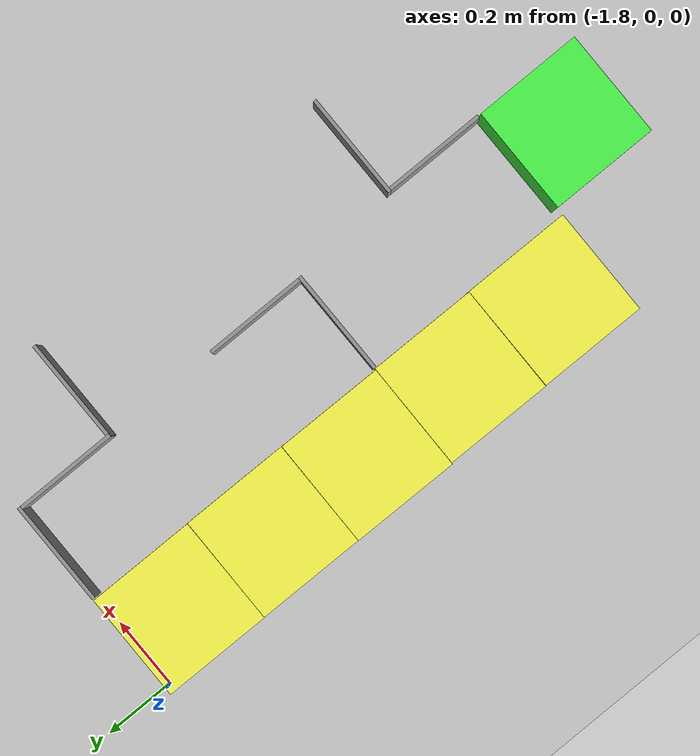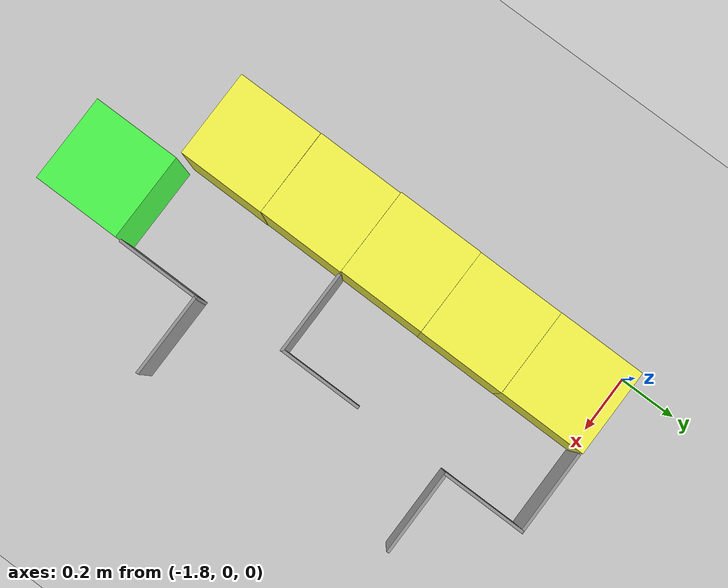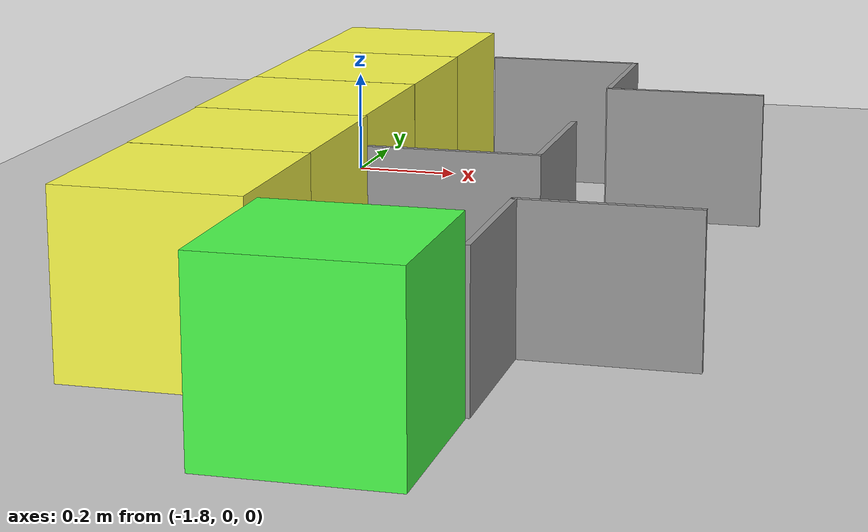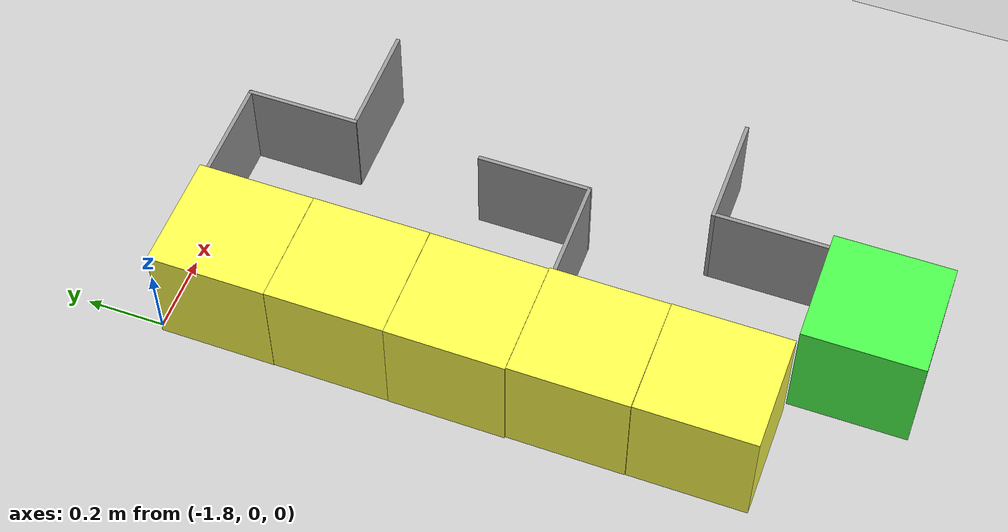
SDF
<sdf version="1.6">
 <world name="default">
  <model name="ground_plane">
   <static>1</static>
   <link name="link">
    <collision name="collision">
     <geometry><plane><normal>0 0 1</normal><size>100 100</size></plane></geometry>
     <surface><friction><ode><mu>100</mu><mu2>50</mu2></ode></friction></surface>
    </collision>
    <visual name="visual">
     <cast_shadows>0</cast_shadows>
     <geometry><plane><normal>0 0 1</normal><size>100 100</size></plane></geometry>
     <material>
      <script><uri>file://media/materials/scripts/gazebo.material</uri><name>Gazebo/Grey</name></script>
     </material>
    </visual>
   </link>
  </model>
  <model name="Box_Yellow">
   <link name="link_0">
    <inertial>
     <mass>1</mass>
     <inertia>
      <ixx>0.166667</ixx>
      <ixy>0</ixy>
      <ixz>0</ixz>
      <iyy>0.166667</iyy>
      <iyz>0</iyz>
      <izz>0.166667</izz>
     </inertia>
    </inertial>
    <visual name="visual">
     <geometry><box><size>0.3 0.3 0.3</size></box></geometry>
     <material>
      <lighting>1</lighting>
      <script><uri>file://media/materials/scripts/gazebo.material</uri><name>Gazebo/Grey</name></script>
      <ambient>1 1 0.3 1</ambient>
      <diffuse>0.7 0.7 0.7 1</diffuse>
      <specular>0.01 0.01 0.01 1</specular>
      <emissive>0 0 0 1</emissive>
      <shader type="vertex"><normal_map>__default__</normal_map></shader>
     </material>
    </visual>
    <collision name="collision">
     <geometry><box><size>0.3 0.3 0.3</size></box></geometry>
     <surface>
      <friction>
       <ode><mu>1</mu><mu2>1</mu2><fdir1>0 0 0</fdir1><slip1>0</slip1><slip2>0</slip2></ode>
       <torsional>
        <coefficient>1</coefficient>
        <patch_radius>0</patch_radius>
        <surface_radius>0</surface_radius>
        <use_patch_radius>1</use_patch_radius>
        <ode><slip>0</slip></ode>
       </torsional>
      </friction>
      <bounce><restitution_coefficient>0</restitution_coefficient><threshold>1e+06</threshold></bounce>
      <contact>
       <collide_without_contact>0</collide_without_contact>
       <collide_without_contact_bitmask>1</collide_without_contact_bitmask>
       <collide_bitmask>1</collide_bitmask>
       <ode>
        <soft_cfm>0</soft_cfm>
        <soft_erp>0.2</soft_erp>
        <kp>1e+13</kp>
        <kd>1</kd>
        <max_vel>0.01</max_vel>
        <min_depth>0</min_depth>
       </ode>
       <bullet>
        <split_impulse>1</split_impulse>
        <split_impulse_penetration_threshold>-0.01</split_impulse_penetration_threshold>
        <soft_cfm>0</soft_cfm>
        <soft_erp>0.2</soft_erp>
        <kp>1e+13</kp>
        <kd>1</kd>
       </bullet>
      </contact>
     </surface>
    </collision>
   </link>
   <static>0</static>
   <pose>-1.66348 -1.35762 0.15 -0 -0 -0.001902</pose>
  </model>
  <model name="Box_Yellow_clone">
   <link name="link_0">
    <inertial>
     <mass>1</mass>
     <inertia>
      <ixx>0.166667</ixx>
      <ixy>0</ixy>
      <ixz>0</ixz>
      <iyy>0.166667</iyy>
      <iyz>0</iyz>
      <izz>0.166667</izz>
     </inertia>
    </inertial>
    <visual name="visual">
     <geometry><box><size>0.3 0.3 0.3</size></box></geometry>
     <material>
      <lighting>1</lighting>
      <script><uri>file://media/materials/scripts/gazebo.material</uri><name>Gazebo/Grey</name></script>
      <ambient>1 1 0.3 1</ambient>
      <diffuse>0.7 0.7 0.7 1</diffuse>
      <specular>0.01 0.01 0.01 1</specular>
      <emissive>0 0 0 1</emissive>
      <shader type="vertex"><normal_map>__default__</normal_map></shader>
     </material>
    </visual>
    <collision name="collision">
     <geometry><box><size>0.3 0.3 0.3</size></box></geometry>
     <surface>
      <friction>
       <ode><mu>1</mu><mu2>1</mu2><fdir1>0 0 0</fdir1><slip1>0</slip1><slip2>0</slip2></ode>
       <torsional>
        <coefficient>1</coefficient>
        <patch_radius>0</patch_radius>
        <surface_radius>0</surface_radius>
        <use_patch_radius>1</use_patch_radius>
        <ode><slip>0</slip></ode>
       </torsional>
      </friction>
      <bounce><restitution_coefficient>0</restitution_coefficient><threshold>1e+06</threshold></bounce>
      <contact>
       <collide_without_contact>0</collide_without_contact>
       <collide_without_contact_bitmask>1</collide_without_contact_bitmask>
       <collide_bitmask>1</collide_bitmask>
       <ode>
        <soft_cfm>0</soft_cfm>
        <soft_erp>0.2</soft_erp>
        <kp>1e+13</kp>
        <kd>1</kd>
        <max_vel>0.01</max_vel>
        <min_depth>0</min_depth>
       </ode>
       <bullet>
        <split_impulse>1</split_impulse>
        <split_impulse_penetration_threshold>-0.01</split_impulse_penetration_threshold>
        <soft_cfm>0</soft_cfm>
        <soft_erp>0.2</soft_erp>
        <kp>1e+13</kp>
        <kd>1</kd>
       </bullet>
      </contact>
     </surface>
    </collision>
   </link>
   <static>0</static>
   <pose>-1.66364 -1.05705 0.15 -0 -0 -0.004612</pose>
  </model>
  <model name="Box_Yellow_clone_0">
   <link name="link_0">
    <inertial>
     <mass>1</mass>
     <inertia>
      <ixx>0.166667</ixx>
      <ixy>0</ixy>
      <ixz>0</ixz>
      <iyy>0.166667</iyy>
      <iyz>0</iyz>
      <izz>0.166667</izz>
     </inertia>
    </inertial>
    <visual name="visual">
     <geometry><box><size>0.3 0.3 0.3</size></box></geometry>
     <material>
      <lighting>1</lighting>
      <script><uri>file://media/materials/scripts/gazebo.material</uri><name>Gazebo/Grey</name></script>
      <ambient>1 1 0.3 1</ambient>
      <diffuse>0.7 0.7 0.7 1</diffuse>
      <specular>0.01 0.01 0.01 1</specular>
      <emissive>0 0 0 1</emissive>
      <shader type="vertex"><normal_map>__default__</normal_map></shader>
     </material>
    </visual>
    <collision name="collision">
     <geometry><box><size>0.3 0.3 0.3</size></box></geometry>
     <surface>
      <friction>
       <ode><mu>1</mu><mu2>1</mu2><fdir1>0 0 0</fdir1><slip1>0</slip1><slip2>0</slip2></ode>
       <torsional>
        <coefficient>1</coefficient>
        <patch_radius>0</patch_radius>
        <surface_radius>0</surface_radius>
        <use_patch_radius>1</use_patch_radius>
        <ode><slip>0</slip></ode>
       </torsional>
      </friction>
      <bounce><restitution_coefficient>0</restitution_coefficient><threshold>1e+06</threshold></bounce>
      <contact>
       <collide_without_contact>0</collide_without_contact>
       <collide_without_contact_bitmask>1</collide_without_contact_bitmask>
       <collide_bitmask>1</collide_bitmask>
       <ode>
        <soft_cfm>0</soft_cfm>
        <soft_erp>0.2</soft_erp>
        <kp>1e+13</kp>
        <kd>1</kd>
        <max_vel>0.01</max_vel>
        <min_depth>0</min_depth>
       </ode>
       <bullet>
        <split_impulse>1</split_impulse>
        <split_impulse_penetration_threshold>-0.01</split_impulse_penetration_threshold>
        <soft_cfm>0</soft_cfm>
        <soft_erp>0.2</soft_erp>
        <kp>1e+13</kp>
        <kd>1</kd>
       </bullet>
      </contact>
     </surface>
    </collision>
   </link>
   <static>0</static>
   <pose>-1.66556 -0.756788 0.149998 8e-06 4e-06 -0.005231</pose>
  </model>
  <model name="Box_Yellow_clone_1">
   <link name="link_0">
    <inertial>
     <mass>1</mass>
     <inertia>
      <ixx>0.166667</ixx>
      <ixy>0</ixy>
      <ixz>0</ixz>
      <iyy>0.166667</iyy>
      <iyz>0</iyz>
      <izz>0.166667</izz>
     </inertia>
    </inertial>
    <visual name="visual">
     <geometry><box><size>0.3 0.3 0.3</size></box></geometry>
     <material>
      <lighting>1</lighting>
      <script><uri>file://media/materials/scripts/gazebo.material</uri><name>Gazebo/Grey</name></script>
      <ambient>1 1 0.3 1</ambient>
      <diffuse>0.7 0.7 0.7 1</diffuse>
      <specular>0.01 0.01 0.01 1</specular>
      <emissive>0 0 0 1</emissive>
      <shader type="vertex"><normal_map>__default__</normal_map></shader>
     </material>
    </visual>
    <collision name="collision">
     <geometry><box><size>0.3 0.3 0.3</size></box></geometry>
     <surface>
      <friction>
       <ode><mu>1</mu><mu2>1</mu2><fdir1>0 0 0</fdir1><slip1>0</slip1><slip2>0</slip2></ode>
       <torsional>
        <coefficient>1</coefficient>
        <patch_radius>0</patch_radius>
        <surface_radius>0</surface_radius>
        <use_patch_radius>1</use_patch_radius>
        <ode><slip>0</slip></ode>
       </torsional>
      </friction>
      <bounce><restitution_coefficient>0</restitution_coefficient><threshold>1e+06</threshold></bounce>
      <contact>
       <collide_without_contact>0</collide_without_contact>
       <collide_without_contact_bitmask>1</collide_without_contact_bitmask>
       <collide_bitmask>1</collide_bitmask>
       <ode>
        <soft_cfm>0</soft_cfm>
        <soft_erp>0.2</soft_erp>
        <kp>1e+13</kp>
        <kd>1</kd>
        <max_vel>0.01</max_vel>
        <min_depth>0</min_depth>
       </ode>
       <bullet>
        <split_impulse>1</split_impulse>
        <split_impulse_penetration_threshold>-0.01</split_impulse_penetration_threshold>
        <soft_cfm>0</soft_cfm>
        <soft_erp>0.2</soft_erp>
        <kp>1e+13</kp>
        <kd>1</kd>
       </bullet>
      </contact>
     </surface>
    </collision>
   </link>
   <static>0</static>
   <pose>-1.66363 -0.45654 0.15 -0 -0 -0.003598</pose>
  </model>
  <model name="Box_Yellow_clone_2">
   <link name="link_0">
    <inertial>
     <mass>1</mass>
     <inertia>
      <ixx>0.166667</ixx>
      <ixy>0</ixy>
      <ixz>0</ixz>
      <iyy>0.166667</iyy>
      <iyz>0</iyz>
      <izz>0.166667</izz>
     </inertia>
    </inertial>
    <visual name="visual">
     <geometry><box><size>0.3 0.3 0.3</size></box></geometry>
     <material>
      <lighting>1</lighting>
      <script><uri>file://media/materials/scripts/gazebo.material</uri><name>Gazebo/Grey</name></script>
      <ambient>1 1 0.3 1</ambient>
      <diffuse>0.7 0.7 0.7 1</diffuse>
      <specular>0.01 0.01 0.01 1</specular>
      <emissive>0 0 0 1</emissive>
      <shader type="vertex"><normal_map>__default__</normal_map></shader>
     </material>
    </visual>
    <collision name="collision">
     <geometry><box><size>0.3 0.3 0.3</size></box></geometry>
     <surface>
      <friction>
       <ode><mu>1</mu><mu2>1</mu2><fdir1>0 0 0</fdir1><slip1>0</slip1><slip2>0</slip2></ode>
       <torsional>
        <coefficient>1</coefficient>
        <patch_radius>0</patch_radius>
        <surface_radius>0</surface_radius>
        <use_patch_radius>1</use_patch_radius>
        <ode><slip>0</slip></ode>
       </torsional>
      </friction>
      <bounce><restitution_coefficient>0</restitution_coefficient><threshold>1e+06</threshold></bounce>
      <contact>
       <collide_without_contact>0</collide_without_contact>
       <collide_without_contact_bitmask>1</collide_without_contact_bitmask>
       <collide_bitmask>1</collide_bitmask>
       <ode>
        <soft_cfm>0</soft_cfm>
        <soft_erp>0.2</soft_erp>
        <kp>1e+13</kp>
        <kd>1</kd>
        <max_vel>0.01</max_vel>
        <min_depth>0</min_depth>
       </ode>
       <bullet>
        <split_impulse>1</split_impulse>
        <split_impulse_penetration_threshold>-0.01</split_impulse_penetration_threshold>
        <soft_cfm>0</soft_cfm>
        <soft_erp>0.2</soft_erp>
        <kp>1e+13</kp>
        <kd>1</kd>
       </bullet>
      </contact>
     </surface>
    </collision>
   </link>
   <static>0</static>
   <pose>-1.66352 -0.156343 0.15 -0 -0 -0.002299</pose>
  </model>
  <model name="Box_Green_clone_7">
   <link name="link_0">
    <inertial>
     <mass>1</mass>
     <inertia>
      <ixx>0.166667</ixx>
      <ixy>0</ixy>
      <ixz>0</ixz>
      <iyy>0.166667</iyy>
      <iyz>0</iyz>
      <izz>0.166667</izz>
     </inertia>
    </inertial>
    <visual name="visual">
     <geometry><box><size>0.3 0.3 0.3</size></box></geometry>
     <material>
      <lighting>1</lighting>
      <script><uri>file://media/materials/scripts/gazebo.material</uri><name>Gazebo/Grey</name></script>
      <ambient>0.3 1 0.3 1</ambient>
      <diffuse>0.7 0.7 0.7 1</diffuse>
      <specular>0.01 0.01 0.01 1</specular>
      <emissive>0 0 0 1</emissive>
      <shader type="vertex"><normal_map>__default__</normal_map></shader>
     </material>
    </visual>
    <collision name="collision">
     <geometry><box><size>0.3 0.3 0.3</size></box></geometry>
     <surface>
      <friction>
       <ode><mu>1</mu><mu2>1</mu2><fdir1>0 0 0</fdir1><slip1>0</slip1><slip2>0</slip2></ode>
       <torsional>
        <coefficient>1</coefficient>
        <patch_radius>0</patch_radius>
        <surface_radius>0</surface_radius>
        <use_patch_radius>1</use_patch_radius>
        <ode><slip>0</slip></ode>
       </torsional>
      </friction>
      <bounce><restitution_coefficient>0</restitution_coefficient><threshold>1e+06</threshold></bounce>
      <contact>
       <collide_without_contact>0</collide_without_contact>
       <collide_without_contact_bitmask>1</collide_without_contact_bitmask>
       <collide_bitmask>1</collide_bitmask>
       <ode>
        <soft_cfm>0</soft_cfm>
        <soft_erp>0.2</soft_erp>
        <kp>1e+13</kp>
        <kd>1</kd>
        <max_vel>0.01</max_vel>
        <min_depth>0</min_depth>
       </ode>
       <bullet>
        <split_impulse>1</split_impulse>
        <split_impulse_penetration_threshold>-0.01</split_impulse_penetration_threshold>
        <soft_cfm>0</soft_cfm>
        <soft_erp>0.2</soft_erp>
        <kp>1e+13</kp>
        <kd>1</kd>
       </bullet>
      </contact>
     </surface>
    </collision>
   </link>
   <static>0</static>
   <pose>-1.34247 -1.65973 0.15 0 -0 -0.000195</pose>
  </model>
  <model name="Maze_L_RU">
   <pose>-1.36417 -0.767498 0 0 -0 0</pose>
   <link name="Wall_11">
    <collision name="Wall_11_Collision">
     <geometry><box><size>0.294 0.01 0.25</size></box></geometry>
     <pose>0 0 0.125 0 -0 0</pose>
    </collision>
    <visual name="Wall_11_Visual">
     <pose>0 0 0.125 0 -0 0</pose>
     <geometry><box><size>0.294 0.01 0.25</size></box></geometry>
     <material>
      <script><uri>file://media/materials/scripts/gazebo.material</uri><name>Gazebo/Grey</name></script>
      <ambient>1 1 1 1</ambient>
     </material>
     <meta><layer>0</layer></meta>
    </visual>
    <pose>0 -0.142 0 0 -0 0</pose>
   </link>
   <link name="Wall_12">
    <collision name="Wall_12_Collision">
     <geometry><box><size>0.294 0.01 0.25</size></box></geometry>
     <pose>0 0 0.125 0 -0 0</pose>
    </collision>
    <visual name="Wall_12_Visual">
     <pose>0 0 0.125 0 -0 0</pose>
     <geometry><box><size>0.294 0.01 0.25</size></box></geometry>
     <material>
      <script><uri>file://media/materials/scripts/gazebo.material</uri><name>Gazebo/Grey</name></script>
      <ambient>1 1 1 1</ambient>
     </material>
     <meta><layer>0</layer></meta>
    </visual>
    <pose>0.142 0 0 0 -0 1.5708</pose>
   </link>
   <static>1</static>
  </model>
  <model name="Maze_L_LU">
   <pose>-1.36321 -0.14843 0 0 -0 0</pose>
   <link name="Wall_0">
    <collision name="Wall_0_Collision">
     <geometry><box><size>0.294 0.01 0.25</size></box></geometry>
     <pose>0 0 0.125 0 -0 0</pose>
    </collision>
    <visual name="Wall_0_Visual">
     <pose>0 0 0.125 0 -0 0</pose>
     <geometry><box><size>0.294 0.01 0.25</size></box></geometry>
     <material>
      <script><uri>file://media/materials/scripts/gazebo.material</uri><name>Gazebo/Grey</name></script>
      <ambient>1 1 1 1</ambient>
     </material>
     <meta><layer>0</layer></meta>
    </visual>
    <pose>0 0.142 0 0 -0 3.14159</pose>
   </link>
   <link name="Wall_2">
    <collision name="Wall_2_Collision">
     <geometry><box><size>0.294 0.01 0.25</size></box></geometry>
     <pose>0 0 0.125 0 -0 0</pose>
    </collision>
    <visual name="Wall_2_Visual">
     <pose>0 0 0.125 0 -0 0</pose>
     <geometry><box><size>0.294 0.01 0.25</size></box></geometry>
     <material>
      <script><uri>file://media/materials/scripts/gazebo.material</uri><name>Gazebo/Grey</name></script>
      <ambient>1 1 1 1</ambient>
     </material>
     <meta><layer>0</layer></meta>
    </visual>
    <pose>0.142 0 0 0 0 -1.5708</pose>
   </link>
   <static>1</static>
  </model>
  <model name="Maze_L_LB_clone_4">
   <pose>-1.04983 -1.35853 0 0 -0 0</pose>
   <link name="Wall_0">
    <collision name="Wall_0_Collision">
     <geometry><box><size>0.294 0.01 0.25</size></box></geometry>
     <pose>0 0 0.125 0 -0 0</pose>
    </collision>
    <visual name="Wall_0_Visual">
     <pose>0 0 0.125 0 -0 0</pose>
     <geometry><box><size>0.294 0.01 0.25</size></box></geometry>
     <material>
      <script><uri>file://media/materials/scripts/gazebo.material</uri><name>Gazebo/Grey</name></script>
      <ambient>1 1 1 1</ambient>
     </material>
     <meta><layer>0</layer></meta>
    </visual>
    <pose>0 0.142 0 0 -0 0</pose>
   </link>
   <link name="Wall_2">
    <collision name="Wall_2_Collision">
     <geometry><box><size>0.294 0.01 0.25</size></box></geometry>
     <pose>0 0 0.125 0 -0 0</pose>
    </collision>
    <visual name="Wall_2_Visual">
     <pose>0 0 0.125 0 -0 0</pose>
     <geometry><box><size>0.294 0.01 0.25</size></box></geometry>
     <material>
      <script><uri>file://media/materials/scripts/gazebo.material</uri><name>Gazebo/Grey</name></script>
      <ambient>1 1 1 1</ambient>
     </material>
     <meta><layer>0</layer></meta>
    </visual>
    <pose>-0.142 0 0 0 0 -1.5708</pose>
   </link>
   <static>1</static>
  </model>
  <model name="Maze_I_V_clone_4">
   <pose>-1.07712 -0.291215 0 0 -0 0</pose>
   <link name="Wall_0">
    <collision name="Wall_0_Collision">
     <geometry><box><size>0.294 0.01 0.25</size></box></geometry>
     <pose>0 0 0.125 0 -0 0</pose>
    </collision>
    <visual name="Wall_0_Visual">
     <pose>0 0 0.125 0 -0 0</pose>
     <geometry><box><size>0.294 0.01 0.25</size></box></geometry>
     <material>
      <script><uri>file://media/materials/scripts/gazebo.material</uri><name>Gazebo/Grey</name></script>
      <ambient>1 1 1 1</ambient>
     </material>
     <meta><layer>0</layer></meta>
    </visual>
   </link>
   <static>1</static>
  </model>
 </world>
</sdf>
